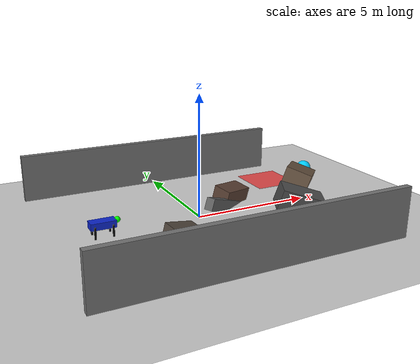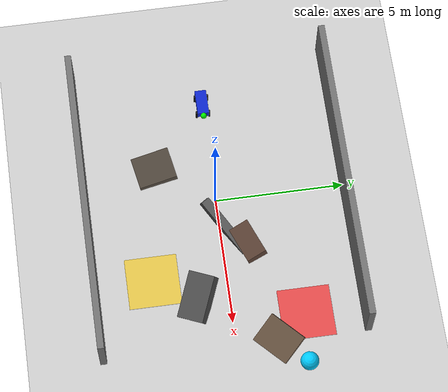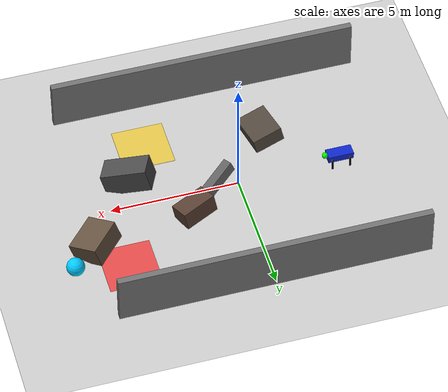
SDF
<?xml version="1.0" ?>
<sdf version="1.6">
  <world name="collapse_world">

    <include>
      <uri>model://sun</uri>
    </include>

    <include>
      <uri>model://ground_plane</uri>
    </include>

    <!-- Pared izquierda -->
    <model name="wall_left">
      <static>true</static>
      <pose>0 5 1 0 0 0</pose>
      <link name="link">
        <collision name="collision">
          <geometry>
            <box>
              <size>12 0.25 2</size>
            </box>
          </geometry>
        </collision>
        <visual name="visual">
          <geometry>
            <box>
              <size>12 0.25 2</size>
            </box>
          </geometry>
          <material>
            <ambient>0.45 0.45 0.45 1</ambient>
            <diffuse>0.45 0.45 0.45 1</diffuse>
          </material>
        </visual>
      </link>
    </model>

    <!-- Pared derecha -->
    <model name="wall_right">
      <static>true</static>
      <pose>0 -5 1 0 0 0</pose>
      <link name="link">
        <collision name="collision">
          <geometry>
            <box>
              <size>12 0.25 2</size>
            </box>
          </geometry>
        </collision>
        <visual name="visual">
          <geometry>
            <box>
              <size>12 0.25 2</size>
            </box>
          </geometry>
          <material>
            <ambient>0.45 0.45 0.45 1</ambient>
            <diffuse>0.45 0.45 0.45 1</diffuse>
          </material>
        </visual>
      </link>
    </model>

    <!-- Pared caída -->
    <model name="fallen_wall">
      <static>true</static>
      <pose>1.2 0.2 0.25 0.1 0.35 0.6</pose>
      <link name="link">
        <collision name="collision">
          <geometry>
            <box>
              <size>2.5 0.35 0.5</size>
            </box>
          </geometry>
        </collision>
        <visual name="visual">
          <geometry>
            <box>
              <size>2.5 0.35 0.5</size>
            </box>
          </geometry>
          <material>
            <ambient>0.38 0.38 0.38 1</ambient>
            <diffuse>0.38 0.38 0.38 1</diffuse>
          </material>
        </visual>
      </link>
    </model>

    <!-- Escombros -->
    <model name="rubble_1">
      <static>true</static>
      <pose>2 1 0.35 0.2 0.1 0.4</pose>
      <link name="link">
        <collision name="collision">
          <geometry>
            <box>
              <size>1.4 0.8 0.7</size>
            </box>
          </geometry>
        </collision>
        <visual name="visual">
          <geometry>
            <box>
              <size>1.4 0.8 0.7</size>
            </box>
          </geometry>
          <material>
            <ambient>0.35 0.25 0.20 1</ambient>
            <diffuse>0.35 0.25 0.20 1</diffuse>
          </material>
        </visual>
      </link>
    </model>

    <model name="rubble_2">
      <static>true</static>
      <pose>4 -1.2 0.45 0.1 0.3 -0.4</pose>
      <link name="link">
        <collision name="collision">
          <geometry>
            <box>
              <size>1.8 1.0 0.9</size>
            </box>
          </geometry>
        </collision>
        <visual name="visual">
          <geometry>
            <box>
              <size>1.8 1.0 0.9</size>
            </box>
          </geometry>
          <material>
            <ambient>0.30 0.30 0.30 1</ambient>
            <diffuse>0.30 0.30 0.30 1</diffuse>
          </material>
        </visual>
      </link>
    </model>

    <model name="rubble_3">
      <static>true</static>
      <pose>6 1.6 0.4 0.3 0.1 0.8</pose>
      <link name="link">
        <collision name="collision">
          <geometry>
            <box>
              <size>1.5 1.2 0.8</size>
            </box>
          </geometry>
        </collision>
        <visual name="visual">
          <geometry>
            <box>
              <size>1.5 1.2 0.8</size>
            </box>
          </geometry>
          <material>
            <ambient>0.40 0.32 0.25 1</ambient>
            <diffuse>0.40 0.32 0.25 1</diffuse>
          </material>
        </visual>
      </link>
    </model>

    <model name="rubble_4">
      <static>true</static>
      <pose>-1.5 -2.2 0.3 0.1 0.2 0.2</pose>
      <link name="link">
        <collision name="collision">
          <geometry>
            <box>
              <size>1.2 1.5 0.6</size>
            </box>
          </geometry>
        </collision>
        <visual name="visual">
          <geometry>
            <box>
              <size>1.2 1.5 0.6</size>
            </box>
          </geometry>
          <material>
            <ambient>0.32 0.28 0.24 1</ambient>
            <diffuse>0.32 0.28 0.24 1</diffuse>
          </material>
        </visual>
      </link>
    </model>

    <!-- Zona de riesgo alto -->
    <model name="risk_zone_high">
      <static>true</static>
      <pose>5 2.8 0.02 0 0 0</pose>
      <link name="link">
        <visual name="visual">
          <geometry>
            <box>
              <size>2.0 2.0 0.03</size>
            </box>
          </geometry>
          <material>
            <ambient>1 0 0 0.6</ambient>
            <diffuse>1 0 0 0.6</diffuse>
          </material>
        </visual>
      </link>
    </model>

    <!-- Zona de riesgo medio -->
    <model name="risk_zone_medium">
      <static>true</static>
      <pose>3 -2.8 0.02 0 0 0</pose>
      <link name="link">
        <visual name="visual">
          <geometry>
            <box>
              <size>2.0 2.0 0.03</size>
            </box>
          </geometry>
          <material>
            <ambient>1 0.8 0 0.6</ambient>
            <diffuse>1 0.8 0 0.6</diffuse>
          </material>
        </visual>
      </link>
    </model>

    <!-- Víctima simulada -->
    <model name="victim_marker">
      <static>true</static>
      <pose>7 2.6 0.4 0 0 0</pose>
      <link name="link">
        <visual name="visual">
          <geometry>
            <sphere>
              <radius>0.35</radius>
            </sphere>
          </geometry>
          <material>
            <ambient>0 0.8 1 1</ambient>
            <diffuse>0 0.8 1 1</diffuse>
          </material>
        </visual>
      </link>
    </model>

    <!-- Robot cuadrúpedo simplificado -->
    <model name="rescue_quadruped">
      <static>false</static>
      <pose>-4 0 0.45 0 0 0</pose>

      <link name="base_link">
        <inertial>
          <mass>12</mass>
          <inertia>
            <ixx>0.5</ixx>
            <iyy>0.5</iyy>
            <izz>0.5</izz>
          </inertia>
        </inertial>

        <collision name="body_collision">
          <geometry>
            <box>
              <size>1.0 0.45 0.28</size>
            </box>
          </geometry>
        </collision>

        <visual name="body_visual">
          <geometry>
            <box>
              <size>1.0 0.45 0.28</size>
            </box>
          </geometry>
          <material>
            <ambient>0.05 0.15 0.8 1</ambient>
            <diffuse>0.05 0.15 0.8 1</diffuse>
          </material>
        </visual>

        <!-- Cabeza / sensor frontal -->
        <visual name="front_sensor">
          <pose>0.58 0 0.08 0 0 0</pose>
          <geometry>
            <sphere>
              <radius>0.12</radius>
            </sphere>
          </geometry>
          <material>
            <ambient>0 1 0 1</ambient>
            <diffuse>0 1 0 1</diffuse>
          </material>
        </visual>

        <!-- Patas visuales -->
        <visual name="leg_fl">
          <pose>0.35 0.25 -0.35 0 0 0</pose>
          <geometry>
            <cylinder>
              <radius>0.04</radius>
              <length>0.7</length>
            </cylinder>
          </geometry>
          <material>
            <ambient>0.02 0.02 0.02 1</ambient>
            <diffuse>0.02 0.02 0.02 1</diffuse>
          </material>
        </visual>

        <visual name="leg_fr">
          <pose>0.35 -0.25 -0.35 0 0 0</pose>
          <geometry>
            <cylinder>
              <radius>0.04</radius>
              <length>0.7</length>
            </cylinder>
          </geometry>
          <material>
            <ambient>0.02 0.02 0.02 1</ambient>
            <diffuse>0.02 0.02 0.02 1</diffuse>
          </material>
        </visual>

        <visual name="leg_bl">
          <pose>-0.35 0.25 -0.35 0 0 0</pose>
          <geometry>
            <cylinder>
              <radius>0.04</radius>
              <length>0.7</length>
            </cylinder>
          </geometry>
          <material>
            <ambient>0.02 0.02 0.02 1</ambient>
            <diffuse>0.02 0.02 0.02 1</diffuse>
          </material>
        </visual>

        <visual name="leg_br">
          <pose>-0.35 -0.25 -0.35 0 0 0</pose>
          <geometry>
            <cylinder>
              <radius>0.04</radius>
              <length>0.7</length>
            </cylinder>
          </geometry>
          <material>
            <ambient>0.02 0.02 0.02 1</ambient>
            <diffuse>0.02 0.02 0.02 1</diffuse>
          </material>
        </visual>
      </link>
    </model>

  </world>
</sdf>
